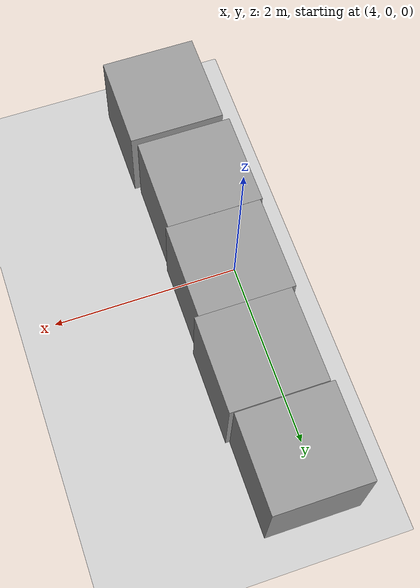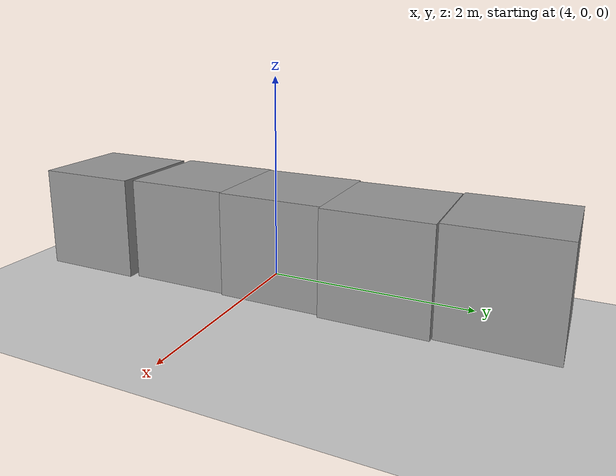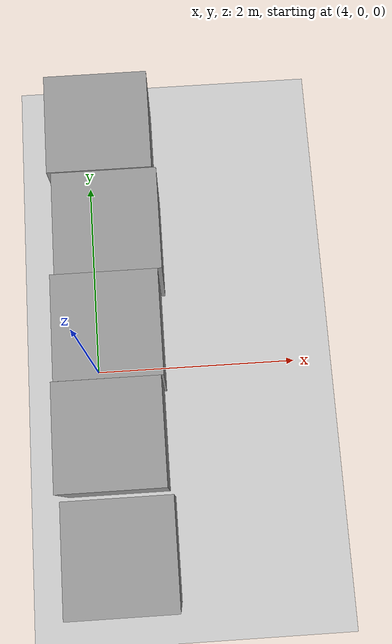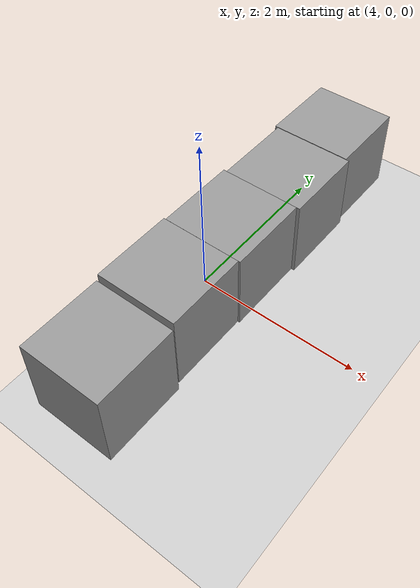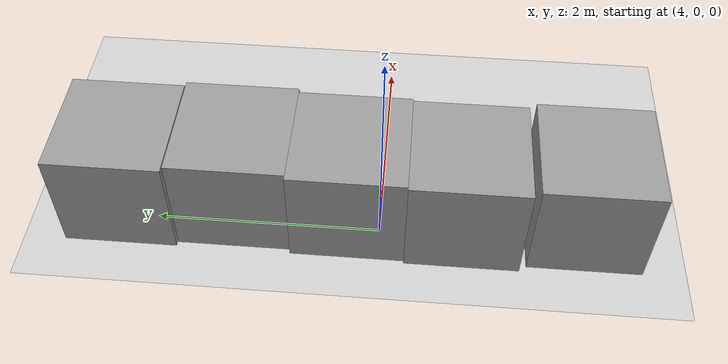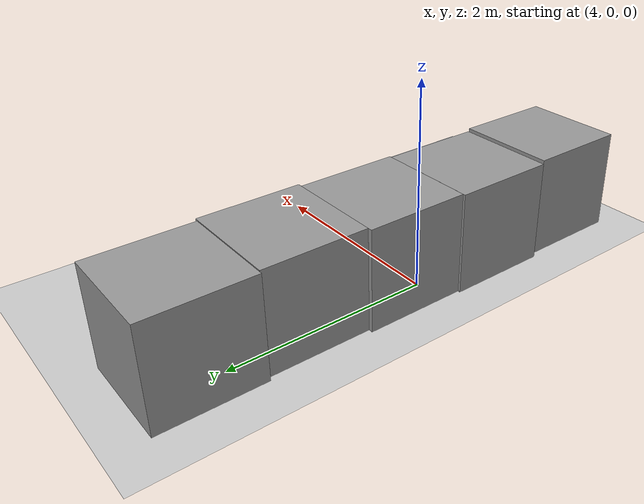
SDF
<sdf version="1.7">
 <world name="default">
  <light name="sun" type="directional">
   <pose>0 0 10 0 -0 0</pose>
   <diffuse>0.8 0.8 0.8 1</diffuse>
   <specular>0.2 0.2 0.2 1</specular>
   <attenuation>
    <range>1000</range>
    <constant>0.9</constant>
    <linear>0.01</linear>
    <quadratic>0.001</quadratic>
   </attenuation>
   <direction>-0.5 0.1 -0.9</direction>
   <spot><inner_angle>0</inner_angle><outer_angle>0</outer_angle><falloff>0</falloff></spot>
  </light>
  <model name="ground_plane">
   <static>1</static>
   <link name="link">
    <collision name="collision">
     <geometry><plane><normal>0 0 1</normal><size>100 100</size></plane></geometry>
     <surface>
      <contact><collide_bitmask>65535</collide_bitmask></contact>
      <friction><ode><mu>100</mu><mu2>50</mu2></ode></friction>
     </surface>
    </collision>
    <visual name="visual">
     <cast_shadows>0</cast_shadows>
     <geometry><plane><normal>0 0 1</normal><size>100 100</size></plane></geometry>
     <material>
      <script><uri>file://media/materials/scripts/gazebo.material</uri><name>Gazebo/Grey</name></script>
     </material>
    </visual>
   </link>
  </model>
  <gravity>0 0 -9.8</gravity>
  <magnetic_field>6e-06 2.3e-05 -4.2e-05</magnetic_field>
  <atmosphere type="adiabatic"/>
  <physics type="ode">
   <max_step_size>0.001</max_step_size>
   <real_time_factor>1</real_time_factor>
   <real_time_update_rate>1000</real_time_update_rate>
  </physics>
  <scene><ambient>0.4 0.4 0.4 1</ambient><background>0.7 0.7 0.7 1</background><shadows>1</shadows></scene>
  <audio><device>default</device></audio>
  <spherical_coordinates>
   <surface_model>EARTH_WGS84</surface_model>
   <latitude_deg>0</latitude_deg>
   <longitude_deg>0</longitude_deg>
   <elevation>0</elevation>
   <heading_deg>0</heading_deg>
  </spherical_coordinates>
  <model name="unit_box">
   <pose>4.18651 2.27699 0.499995 0 1e-05 0</pose>
   <link name="link">
    <inertial>
     <mass>1</mass>
     <inertia>
      <ixx>0.166667</ixx>
      <ixy>0</ixy>
      <ixz>0</ixz>
      <iyy>0.166667</iyy>
      <iyz>0</iyz>
      <izz>0.166667</izz>
     </inertia>
    </inertial>
    <collision name="collision"><geometry><box><size>1 1 1</size></box></geometry></collision>
    <visual name="visual">
     <geometry><box><size>1 1 1</size></box></geometry>
     <material>
      <script><name>Gazebo/Grey</name><uri>file://media/materials/scripts/gazebo.material</uri></script>
     </material>
    </visual>
   </link>
  </model>
  <model name="unit_box_0">
   <pose>4.22765 1.26918 0.499995 -1e-05 -0 -0.000492</pose>
   <link name="link">
    <inertial>
     <mass>1</mass>
     <inertia>
      <ixx>0.166667</ixx>
      <ixy>0</ixy>
      <ixz>0</ixz>
      <iyy>0.166667</iyy>
      <iyz>0</iyz>
      <izz>0.166667</izz>
     </inertia>
    </inertial>
    <collision name="collision"><geometry><box><size>1 1 1</size></box></geometry></collision>
    <visual name="visual">
     <geometry><box><size>1 1 1</size></box></geometry>
     <material>
      <script><name>Gazebo/Grey</name><uri>file://media/materials/scripts/gazebo.material</uri></script>
     </material>
    </visual>
   </link>
  </model>
  <model name="unit_box_1">
   <pose>4.18626 0.269195 0.499995 0 1e-05 -0.00049</pose>
   <link name="link">
    <inertial>
     <mass>1</mass>
     <inertia>
      <ixx>0.166667</ixx>
      <ixy>0</ixy>
      <ixz>0</ixz>
      <iyy>0.166667</iyy>
      <iyz>0</iyz>
      <izz>0.166667</izz>
     </inertia>
    </inertial>
    <collision name="collision"><geometry><box><size>1 1 1</size></box></geometry></collision>
    <visual name="visual">
     <geometry><box><size>1 1 1</size></box></geometry>
     <material>
      <script><name>Gazebo/Grey</name><uri>file://media/materials/scripts/gazebo.material</uri></script>
     </material>
    </visual>
   </link>
  </model>
  <model name="unit_box_2">
   <pose>4.16252 -0.730997 0.499995 -0 1e-05 -8.9e-05</pose>
   <link name="link">
    <inertial>
     <mass>1</mass>
     <inertia>
      <ixx>0.166667</ixx>
      <ixy>0</ixy>
      <ixz>0</ixz>
      <iyy>0.166667</iyy>
      <iyz>0</iyz>
      <izz>0.166667</izz>
     </inertia>
    </inertial>
    <collision name="collision"><geometry><box><size>1 1 1</size></box></geometry></collision>
    <visual name="visual">
     <geometry><box><size>1 1 1</size></box></geometry>
     <material>
      <script><name>Gazebo/Grey</name><uri>file://media/materials/scripts/gazebo.material</uri></script>
     </material>
    </visual>
   </link>
  </model>
  <model name="unit_box_3">
   <pose>4.21222 -1.79261 0.499995 0 1e-05 0</pose>
   <link name="link">
    <inertial>
     <mass>1</mass>
     <inertia>
      <ixx>0.166667</ixx>
      <ixy>0</ixy>
      <ixz>0</ixz>
      <iyy>0.166667</iyy>
      <iyz>0</iyz>
      <izz>0.166667</izz>
     </inertia>
    </inertial>
    <collision name="collision"><geometry><box><size>1 1 1</size></box></geometry></collision>
    <visual name="visual">
     <geometry><box><size>1 1 1</size></box></geometry>
     <material>
      <script><name>Gazebo/Grey</name><uri>file://media/materials/scripts/gazebo.material</uri></script>
     </material>
    </visual>
   </link>
  </model>
 </world>
</sdf>
